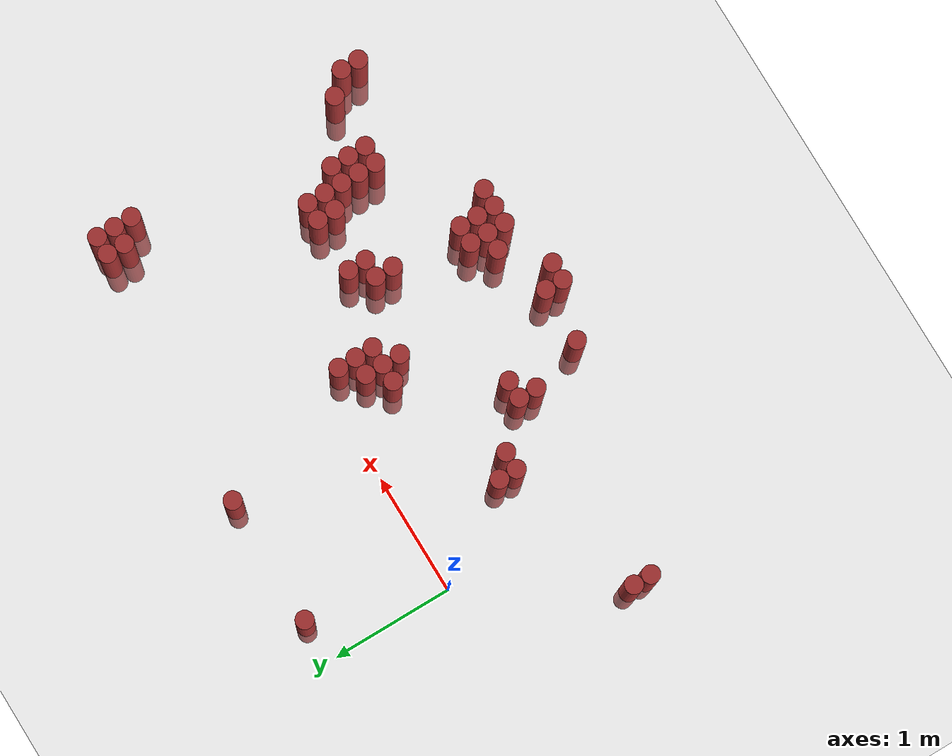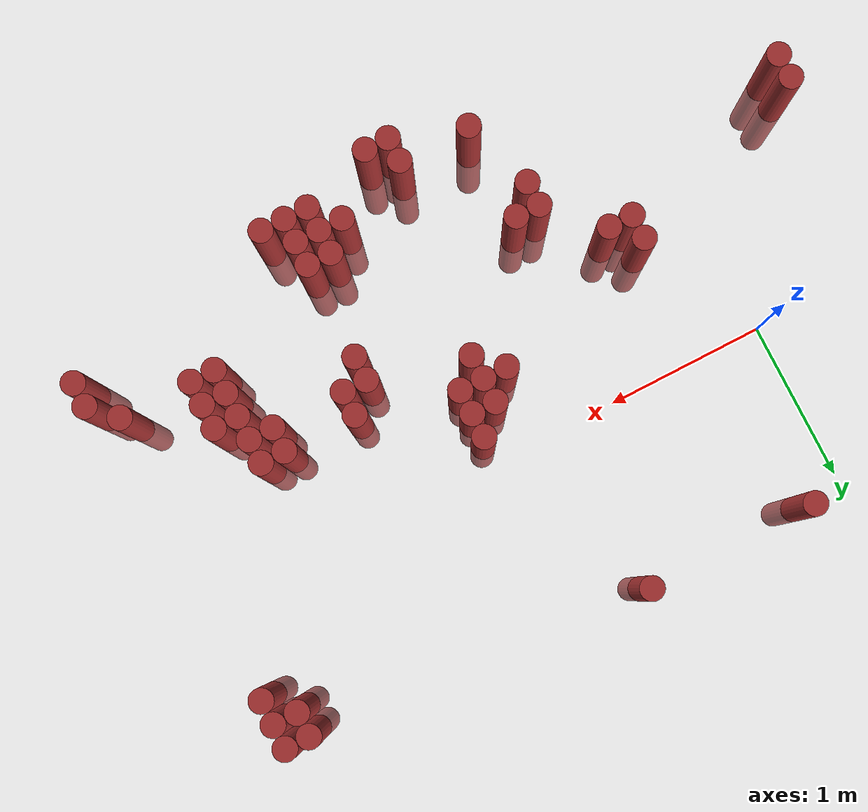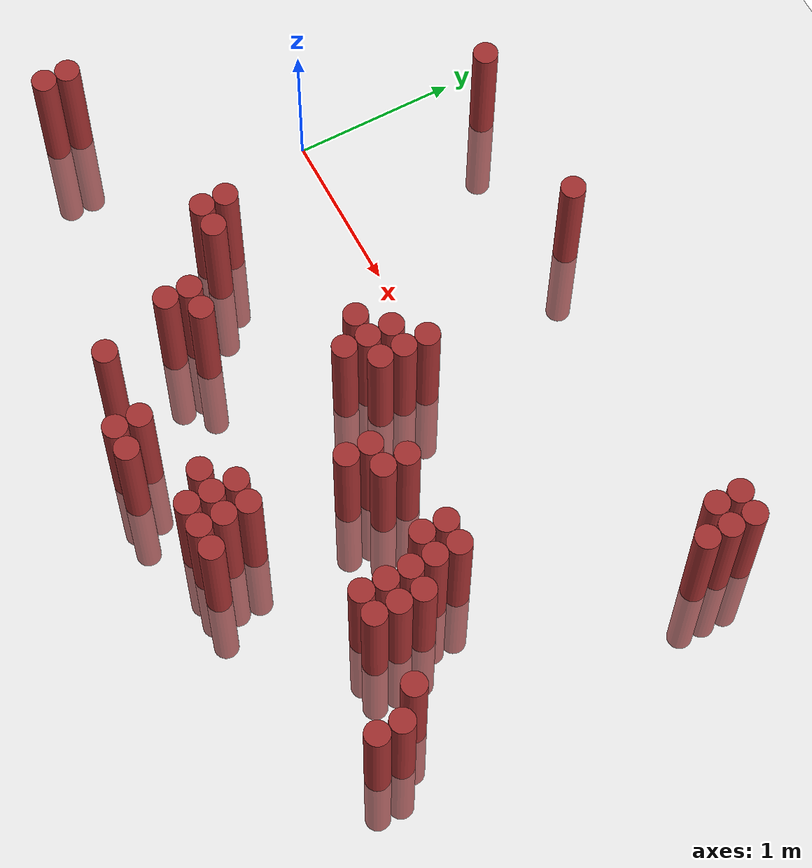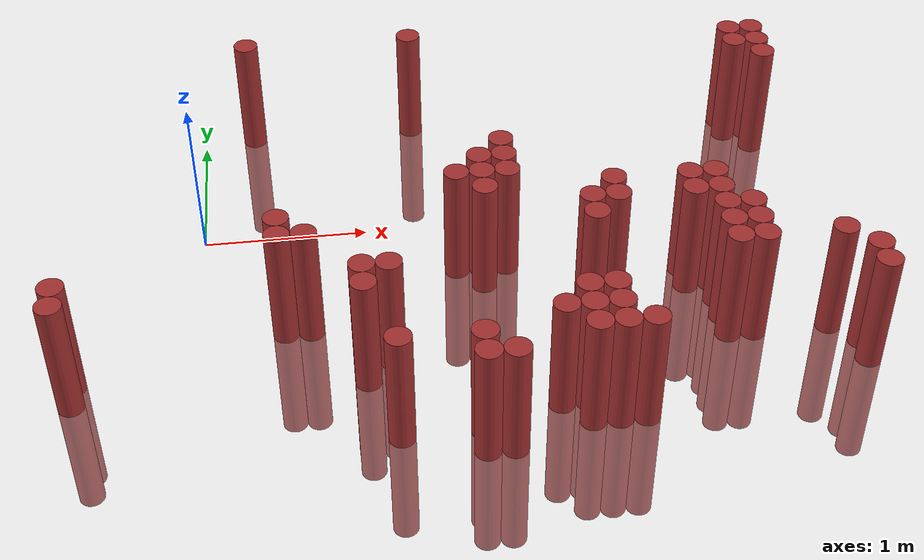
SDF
<sdf version="1.6">
 <world name="default">
  <model name="ground_plane">
   <static>1</static>
   <link name="link">
    <collision name="collision">
     <geometry><plane><normal>0 0 1</normal><size>100 100</size></plane></geometry>
     <surface><friction><ode><mu>100</mu><mu2>50</mu2></ode></friction></surface>
    </collision>
    <visual name="visual">
     <cast_shadows>0</cast_shadows>
     <geometry><plane><normal>0 0 1</normal><size>100 100</size></plane></geometry>
     <material>
      <script><uri>file://media/materials/scripts/gazebo.material</uri><name>Gazebo/Grey</name></script>
     </material>
    </visual>
   </link>
  </model>
  <model name="unit_cylinder_340">
   <static>1</static>
   <pose>-0.725000 -1.325000 0.000000 0.000000 0.000000 0.000000</pose>
   <link name="link">
    <inertial>
     <mass>1</mass>
     <inertia><ixx>0.145833</ixx><ixy>0</ixy><ixz>0</ixz><iyy>0.145833</iyy><iyz>0</iyz><izz>0.125</izz></inertia>
    </inertial>
    <collision name="collision">
     <geometry><cylinder><radius>0.075000</radius><length>1.5</length></cylinder></geometry>
    </collision>
    <visual name="visual">
     <geometry><cylinder><radius>0.075000</radius><length>1.5</length></cylinder></geometry>
     <material>
      <ambient>0.648000 0.192000 0.192000 1</ambient>
      <diffuse>0.648000 0.192000 0.192000 1</diffuse>
     </material>
     <material>
      <script><name>Gazebo/Grey</name><uri>file://media/materials/scripts/gazebo.material</uri></script>
     </material>
    </visual>
   </link>
  </model>
  <model name="unit_cylinder_341">
   <static>1</static>
   <pose>-0.725000 -1.175000 0.000000 0.000000 0.000000 0.000000</pose>
   <link name="link">
    <inertial>
     <mass>1</mass>
     <inertia><ixx>0.145833</ixx><ixy>0</ixy><ixz>0</ixz><iyy>0.145833</iyy><iyz>0</iyz><izz>0.125</izz></inertia>
    </inertial>
    <collision name="collision">
     <geometry><cylinder><radius>0.075000</radius><length>1.5</length></cylinder></geometry>
    </collision>
    <visual name="visual">
     <geometry><cylinder><radius>0.075000</radius><length>1.5</length></cylinder></geometry>
     <material>
      <ambient>0.648000 0.192000 0.192000 1</ambient>
      <diffuse>0.648000 0.192000 0.192000 1</diffuse>
     </material>
     <material>
      <script><name>Gazebo/Grey</name><uri>file://media/materials/scripts/gazebo.material</uri></script>
     </material>
    </visual>
   </link>
  </model>
  <model name="unit_cylinder_368">
   <static>1</static>
   <pose>0.325000 1.075000 0.000000 0.000000 0.000000 0.000000</pose>
   <link name="link">
    <inertial>
     <mass>1</mass>
     <inertia><ixx>0.145833</ixx><ixy>0</ixy><ixz>0</ixz><iyy>0.145833</iyy><iyz>0</iyz><izz>0.125</izz></inertia>
    </inertial>
    <collision name="collision">
     <geometry><cylinder><radius>0.075000</radius><length>1.5</length></cylinder></geometry>
    </collision>
    <visual name="visual">
     <geometry><cylinder><radius>0.075000</radius><length>1.5</length></cylinder></geometry>
     <material>
      <ambient>0.648000 0.192000 0.192000 1</ambient>
      <diffuse>0.648000 0.192000 0.192000 1</diffuse>
     </material>
     <material>
      <script><name>Gazebo/Grey</name><uri>file://media/materials/scripts/gazebo.material</uri></script>
     </material>
    </visual>
   </link>
  </model>
  <model name="unit_cylinder_372">
   <static>1</static>
   <pose>0.475000 -0.875000 0.000000 0.000000 0.000000 0.000000</pose>
   <link name="link">
    <inertial>
     <mass>1</mass>
     <inertia><ixx>0.145833</ixx><ixy>0</ixy><ixz>0</ixz><iyy>0.145833</iyy><iyz>0</iyz><izz>0.125</izz></inertia>
    </inertial>
    <collision name="collision">
     <geometry><cylinder><radius>0.075000</radius><length>1.5</length></cylinder></geometry>
    </collision>
    <visual name="visual">
     <geometry><cylinder><radius>0.075000</radius><length>1.5</length></cylinder></geometry>
     <material>
      <ambient>0.648000 0.192000 0.192000 1</ambient>
      <diffuse>0.648000 0.192000 0.192000 1</diffuse>
     </material>
     <material>
      <script><name>Gazebo/Grey</name><uri>file://media/materials/scripts/gazebo.material</uri></script>
     </material>
    </visual>
   </link>
  </model>
  <model name="unit_cylinder_373">
   <static>1</static>
   <pose>0.475000 -0.725000 0.000000 0.000000 0.000000 0.000000</pose>
   <link name="link">
    <inertial>
     <mass>1</mass>
     <inertia><ixx>0.145833</ixx><ixy>0</ixy><ixz>0</ixz><iyy>0.145833</iyy><iyz>0</iyz><izz>0.125</izz></inertia>
    </inertial>
    <collision name="collision">
     <geometry><cylinder><radius>0.075000</radius><length>1.5</length></cylinder></geometry>
    </collision>
    <visual name="visual">
     <geometry><cylinder><radius>0.075000</radius><length>1.5</length></cylinder></geometry>
     <material>
      <ambient>0.648000 0.192000 0.192000 1</ambient>
      <diffuse>0.648000 0.192000 0.192000 1</diffuse>
     </material>
     <material>
      <script><name>Gazebo/Grey</name><uri>file://media/materials/scripts/gazebo.material</uri></script>
     </material>
    </visual>
   </link>
  </model>
  <model name="unit_cylinder_377">
   <static>1</static>
   <pose>0.625000 -0.875000 0.000000 0.000000 0.000000 0.000000</pose>
   <link name="link">
    <inertial>
     <mass>1</mass>
     <inertia><ixx>0.145833</ixx><ixy>0</ixy><ixz>0</ixz><iyy>0.145833</iyy><iyz>0</iyz><izz>0.125</izz></inertia>
    </inertial>
    <collision name="collision">
     <geometry><cylinder><radius>0.075000</radius><length>1.5</length></cylinder></geometry>
    </collision>
    <visual name="visual">
     <geometry><cylinder><radius>0.075000</radius><length>1.5</length></cylinder></geometry>
     <material>
      <ambient>0.648000 0.192000 0.192000 1</ambient>
      <diffuse>0.648000 0.192000 0.192000 1</diffuse>
     </material>
     <material>
      <script><name>Gazebo/Grey</name><uri>file://media/materials/scripts/gazebo.material</uri></script>
     </material>
    </visual>
   </link>
  </model>
  <model name="unit_cylinder_382">
   <static>1</static>
   <pose>0.925000 -1.325000 0.000000 0.000000 0.000000 0.000000</pose>
   <link name="link">
    <inertial>
     <mass>1</mass>
     <inertia><ixx>0.145833</ixx><ixy>0</ixy><ixz>0</ixz><iyy>0.145833</iyy><iyz>0</iyz><izz>0.125</izz></inertia>
    </inertial>
    <collision name="collision">
     <geometry><cylinder><radius>0.075000</radius><length>1.5</length></cylinder></geometry>
    </collision>
    <visual name="visual">
     <geometry><cylinder><radius>0.075000</radius><length>1.5</length></cylinder></geometry>
     <material>
      <ambient>0.648000 0.192000 0.192000 1</ambient>
      <diffuse>0.648000 0.192000 0.192000 1</diffuse>
     </material>
     <material>
      <script><name>Gazebo/Grey</name><uri>file://media/materials/scripts/gazebo.material</uri></script>
     </material>
    </visual>
   </link>
  </model>
  <model name="unit_cylinder_383">
   <static>1</static>
   <pose>0.925000 -1.175000 0.000000 0.000000 0.000000 0.000000</pose>
   <link name="link">
    <inertial>
     <mass>1</mass>
     <inertia><ixx>0.145833</ixx><ixy>0</ixy><ixz>0</ixz><iyy>0.145833</iyy><iyz>0</iyz><izz>0.125</izz></inertia>
    </inertial>
    <collision name="collision">
     <geometry><cylinder><radius>0.075000</radius><length>1.5</length></cylinder></geometry>
    </collision>
    <visual name="visual">
     <geometry><cylinder><radius>0.075000</radius><length>1.5</length></cylinder></geometry>
     <material>
      <ambient>0.648000 0.192000 0.192000 1</ambient>
      <diffuse>0.648000 0.192000 0.192000 1</diffuse>
     </material>
     <material>
      <script><name>Gazebo/Grey</name><uri>file://media/materials/scripts/gazebo.material</uri></script>
     </material>
    </visual>
   </link>
  </model>
  <model name="unit_cylinder_390">
   <static>1</static>
   <pose>1.075000 -1.775000 0.000000 0.000000 0.000000 0.000000</pose>
   <link name="link">
    <inertial>
     <mass>1</mass>
     <inertia><ixx>0.145833</ixx><ixy>0</ixy><ixz>0</ixz><iyy>0.145833</iyy><iyz>0</iyz><izz>0.125</izz></inertia>
    </inertial>
    <collision name="collision">
     <geometry><cylinder><radius>0.075000</radius><length>1.5</length></cylinder></geometry>
    </collision>
    <visual name="visual">
     <geometry><cylinder><radius>0.075000</radius><length>1.5</length></cylinder></geometry>
     <material>
      <ambient>0.648000 0.192000 0.192000 1</ambient>
      <diffuse>0.648000 0.192000 0.192000 1</diffuse>
     </material>
     <material>
      <script><name>Gazebo/Grey</name><uri>file://media/materials/scripts/gazebo.material</uri></script>
     </material>
    </visual>
   </link>
  </model>
  <model name="unit_cylinder_391">
   <static>1</static>
   <pose>1.075000 -1.175000 0.000000 0.000000 0.000000 0.000000</pose>
   <link name="link">
    <inertial>
     <mass>1</mass>
     <inertia><ixx>0.145833</ixx><ixy>0</ixy><ixz>0</ixz><iyy>0.145833</iyy><iyz>0</iyz><izz>0.125</izz></inertia>
    </inertial>
    <collision name="collision">
     <geometry><cylinder><radius>0.075000</radius><length>1.5</length></cylinder></geometry>
    </collision>
    <visual name="visual">
     <geometry><cylinder><radius>0.075000</radius><length>1.5</length></cylinder></geometry>
     <material>
      <ambient>0.648000 0.192000 0.192000 1</ambient>
      <diffuse>0.648000 0.192000 0.192000 1</diffuse>
     </material>
     <material>
      <script><name>Gazebo/Grey</name><uri>file://media/materials/scripts/gazebo.material</uri></script>
     </material>
    </visual>
   </link>
  </model>
  <model name="unit_cylinder_401">
   <static>1</static>
   <pose>1.375000 1.075000 0.000000 0.000000 0.000000 0.000000</pose>
   <link name="link">
    <inertial>
     <mass>1</mass>
     <inertia><ixx>0.145833</ixx><ixy>0</ixy><ixz>0</ixz><iyy>0.145833</iyy><iyz>0</iyz><izz>0.125</izz></inertia>
    </inertial>
    <collision name="collision">
     <geometry><cylinder><radius>0.075000</radius><length>1.5</length></cylinder></geometry>
    </collision>
    <visual name="visual">
     <geometry><cylinder><radius>0.075000</radius><length>1.5</length></cylinder></geometry>
     <material>
      <ambient>0.648000 0.192000 0.192000 1</ambient>
      <diffuse>0.648000 0.192000 0.192000 1</diffuse>
     </material>
     <material>
      <script><name>Gazebo/Grey</name><uri>file://media/materials/scripts/gazebo.material</uri></script>
     </material>
    </visual>
   </link>
  </model>
  <model name="unit_cylinder_403">
   <static>1</static>
   <pose>1.525000 -1.925000 0.000000 0.000000 0.000000 0.000000</pose>
   <link name="link">
    <inertial>
     <mass>1</mass>
     <inertia><ixx>0.145833</ixx><ixy>0</ixy><ixz>0</ixz><iyy>0.145833</iyy><iyz>0</iyz><izz>0.125</izz></inertia>
    </inertial>
    <collision name="collision">
     <geometry><cylinder><radius>0.075000</radius><length>1.5</length></cylinder></geometry>
    </collision>
    <visual name="visual">
     <geometry><cylinder><radius>0.075000</radius><length>1.5</length></cylinder></geometry>
     <material>
      <ambient>0.648000 0.192000 0.192000 1</ambient>
      <diffuse>0.648000 0.192000 0.192000 1</diffuse>
     </material>
     <material>
      <script><name>Gazebo/Grey</name><uri>file://media/materials/scripts/gazebo.material</uri></script>
     </material>
    </visual>
   </link>
  </model>
  <model name="unit_cylinder_404">
   <static>1</static>
   <pose>1.525000 -1.775000 0.000000 0.000000 0.000000 0.000000</pose>
   <link name="link">
    <inertial>
     <mass>1</mass>
     <inertia><ixx>0.145833</ixx><ixy>0</ixy><ixz>0</ixz><iyy>0.145833</iyy><iyz>0</iyz><izz>0.125</izz></inertia>
    </inertial>
    <collision name="collision">
     <geometry><cylinder><radius>0.075000</radius><length>1.5</length></cylinder></geometry>
    </collision>
    <visual name="visual">
     <geometry><cylinder><radius>0.075000</radius><length>1.5</length></cylinder></geometry>
     <material>
      <ambient>0.648000 0.192000 0.192000 1</ambient>
      <diffuse>0.648000 0.192000 0.192000 1</diffuse>
     </material>
     <material>
      <script><name>Gazebo/Grey</name><uri>file://media/materials/scripts/gazebo.material</uri></script>
     </material>
    </visual>
   </link>
  </model>
  <model name="unit_cylinder_405">
   <static>1</static>
   <pose>1.525000 -0.425000 0.000000 0.000000 0.000000 0.000000</pose>
   <link name="link">
    <inertial>
     <mass>1</mass>
     <inertia><ixx>0.145833</ixx><ixy>0</ixy><ixz>0</ixz><iyy>0.145833</iyy><iyz>0</iyz><izz>0.125</izz></inertia>
    </inertial>
    <collision name="collision">
     <geometry><cylinder><radius>0.075000</radius><length>1.5</length></cylinder></geometry>
    </collision>
    <visual name="visual">
     <geometry><cylinder><radius>0.075000</radius><length>1.5</length></cylinder></geometry>
     <material>
      <ambient>0.648000 0.192000 0.192000 1</ambient>
      <diffuse>0.648000 0.192000 0.192000 1</diffuse>
     </material>
     <material>
      <script><name>Gazebo/Grey</name><uri>file://media/materials/scripts/gazebo.material</uri></script>
     </material>
    </visual>
   </link>
  </model>
  <model name="unit_cylinder_408">
   <static>1</static>
   <pose>1.675000 -1.925000 0.000000 0.000000 0.000000 0.000000</pose>
   <link name="link">
    <inertial>
     <mass>1</mass>
     <inertia><ixx>0.145833</ixx><ixy>0</ixy><ixz>0</ixz><iyy>0.145833</iyy><iyz>0</iyz><izz>0.125</izz></inertia>
    </inertial>
    <collision name="collision">
     <geometry><cylinder><radius>0.075000</radius><length>1.5</length></cylinder></geometry>
    </collision>
    <visual name="visual">
     <geometry><cylinder><radius>0.075000</radius><length>1.5</length></cylinder></geometry>
     <material>
      <ambient>0.648000 0.192000 0.192000 1</ambient>
      <diffuse>0.648000 0.192000 0.192000 1</diffuse>
     </material>
     <material>
      <script><name>Gazebo/Grey</name><uri>file://media/materials/scripts/gazebo.material</uri></script>
     </material>
    </visual>
   </link>
  </model>
  <model name="unit_cylinder_409">
   <static>1</static>
   <pose>1.675000 -0.575000 0.000000 0.000000 0.000000 0.000000</pose>
   <link name="link">
    <inertial>
     <mass>1</mass>
     <inertia><ixx>0.145833</ixx><ixy>0</ixy><ixz>0</ixz><iyy>0.145833</iyy><iyz>0</iyz><izz>0.125</izz></inertia>
    </inertial>
    <collision name="collision">
     <geometry><cylinder><radius>0.075000</radius><length>1.5</length></cylinder></geometry>
    </collision>
    <visual name="visual">
     <geometry><cylinder><radius>0.075000</radius><length>1.5</length></cylinder></geometry>
     <material>
      <ambient>0.648000 0.192000 0.192000 1</ambient>
      <diffuse>0.648000 0.192000 0.192000 1</diffuse>
     </material>
     <material>
      <script><name>Gazebo/Grey</name><uri>file://media/materials/scripts/gazebo.material</uri></script>
     </material>
    </visual>
   </link>
  </model>
  <model name="unit_cylinder_410">
   <static>1</static>
   <pose>1.675000 -0.425000 0.000000 0.000000 0.000000 0.000000</pose>
   <link name="link">
    <inertial>
     <mass>1</mass>
     <inertia><ixx>0.145833</ixx><ixy>0</ixy><ixz>0</ixz><iyy>0.145833</iyy><iyz>0</iyz><izz>0.125</izz></inertia>
    </inertial>
    <collision name="collision">
     <geometry><cylinder><radius>0.075000</radius><length>1.5</length></cylinder></geometry>
    </collision>
    <visual name="visual">
     <geometry><cylinder><radius>0.075000</radius><length>1.5</length></cylinder></geometry>
     <material>
      <ambient>0.648000 0.192000 0.192000 1</ambient>
      <diffuse>0.648000 0.192000 0.192000 1</diffuse>
     </material>
     <material>
      <script><name>Gazebo/Grey</name><uri>file://media/materials/scripts/gazebo.material</uri></script>
     </material>
    </visual>
   </link>
  </model>
  <model name="unit_cylinder_411">
   <static>1</static>
   <pose>1.675000 -0.275000 0.000000 0.000000 0.000000 0.000000</pose>
   <link name="link">
    <inertial>
     <mass>1</mass>
     <inertia><ixx>0.145833</ixx><ixy>0</ixy><ixz>0</ixz><iyy>0.145833</iyy><iyz>0</iyz><izz>0.125</izz></inertia>
    </inertial>
    <collision name="collision">
     <geometry><cylinder><radius>0.075000</radius><length>1.5</length></cylinder></geometry>
    </collision>
    <visual name="visual">
     <geometry><cylinder><radius>0.075000</radius><length>1.5</length></cylinder></geometry>
     <material>
      <ambient>0.648000 0.192000 0.192000 1</ambient>
      <diffuse>0.648000 0.192000 0.192000 1</diffuse>
     </material>
     <material>
      <script><name>Gazebo/Grey</name><uri>file://media/materials/scripts/gazebo.material</uri></script>
     </material>
    </visual>
   </link>
  </model>
  <model name="unit_cylinder_413">
   <static>1</static>
   <pose>1.825000 -0.425000 0.000000 0.000000 0.000000 0.000000</pose>
   <link name="link">
    <inertial>
     <mass>1</mass>
     <inertia><ixx>0.145833</ixx><ixy>0</ixy><ixz>0</ixz><iyy>0.145833</iyy><iyz>0</iyz><izz>0.125</izz></inertia>
    </inertial>
    <collision name="collision">
     <geometry><cylinder><radius>0.075000</radius><length>1.5</length></cylinder></geometry>
    </collision>
    <visual name="visual">
     <geometry><cylinder><radius>0.075000</radius><length>1.5</length></cylinder></geometry>
     <material>
      <ambient>0.648000 0.192000 0.192000 1</ambient>
      <diffuse>0.648000 0.192000 0.192000 1</diffuse>
     </material>
     <material>
      <script><name>Gazebo/Grey</name><uri>file://media/materials/scripts/gazebo.material</uri></script>
     </material>
    </visual>
   </link>
  </model>
  <model name="unit_cylinder_414">
   <static>1</static>
   <pose>1.825000 -0.275000 0.000000 0.000000 0.000000 0.000000</pose>
   <link name="link">
    <inertial>
     <mass>1</mass>
     <inertia><ixx>0.145833</ixx><ixy>0</ixy><ixz>0</ixz><iyy>0.145833</iyy><iyz>0</iyz><izz>0.125</izz></inertia>
    </inertial>
    <collision name="collision">
     <geometry><cylinder><radius>0.075000</radius><length>1.5</length></cylinder></geometry>
    </collision>
    <visual name="visual">
     <geometry><cylinder><radius>0.075000</radius><length>1.5</length></cylinder></geometry>
     <material>
      <ambient>0.648000 0.192000 0.192000 1</ambient>
      <diffuse>0.648000 0.192000 0.192000 1</diffuse>
     </material>
     <material>
      <script><name>Gazebo/Grey</name><uri>file://media/materials/scripts/gazebo.material</uri></script>
     </material>
    </visual>
   </link>
  </model>
  <model name="unit_cylinder_415">
   <static>1</static>
   <pose>1.825000 -0.125000 0.000000 0.000000 0.000000 0.000000</pose>
   <link name="link">
    <inertial>
     <mass>1</mass>
     <inertia><ixx>0.145833</ixx><ixy>0</ixy><ixz>0</ixz><iyy>0.145833</iyy><iyz>0</iyz><izz>0.125</izz></inertia>
    </inertial>
    <collision name="collision">
     <geometry><cylinder><radius>0.075000</radius><length>1.5</length></cylinder></geometry>
    </collision>
    <visual name="visual">
     <geometry><cylinder><radius>0.075000</radius><length>1.5</length></cylinder></geometry>
     <material>
      <ambient>0.648000 0.192000 0.192000 1</ambient>
      <diffuse>0.648000 0.192000 0.192000 1</diffuse>
     </material>
     <material>
      <script><name>Gazebo/Grey</name><uri>file://media/materials/scripts/gazebo.material</uri></script>
     </material>
    </visual>
   </link>
  </model>
  <model name="unit_cylinder_421">
   <static>1</static>
   <pose>1.975000 -1.625000 0.000000 0.000000 0.000000 0.000000</pose>
   <link name="link">
    <inertial>
     <mass>1</mass>
     <inertia><ixx>0.145833</ixx><ixy>0</ixy><ixz>0</ixz><iyy>0.145833</iyy><iyz>0</iyz><izz>0.125</izz></inertia>
    </inertial>
    <collision name="collision">
     <geometry><cylinder><radius>0.075000</radius><length>1.5</length></cylinder></geometry>
    </collision>
    <visual name="visual">
     <geometry><cylinder><radius>0.075000</radius><length>1.5</length></cylinder></geometry>
     <material>
      <ambient>0.648000 0.192000 0.192000 1</ambient>
      <diffuse>0.648000 0.192000 0.192000 1</diffuse>
     </material>
     <material>
      <script><name>Gazebo/Grey</name><uri>file://media/materials/scripts/gazebo.material</uri></script>
     </material>
    </visual>
   </link>
  </model>
  <model name="unit_cylinder_428">
   <static>1</static>
   <pose>2.125000 -1.775000 0.000000 0.000000 0.000000 0.000000</pose>
   <link name="link">
    <inertial>
     <mass>1</mass>
     <inertia><ixx>0.145833</ixx><ixy>0</ixy><ixz>0</ixz><iyy>0.145833</iyy><iyz>0</iyz><izz>0.125</izz></inertia>
    </inertial>
    <collision name="collision">
     <geometry><cylinder><radius>0.075000</radius><length>1.5</length></cylinder></geometry>
    </collision>
    <visual name="visual">
     <geometry><cylinder><radius>0.075000</radius><length>1.5</length></cylinder></geometry>
     <material>
      <ambient>0.648000 0.192000 0.192000 1</ambient>
      <diffuse>0.648000 0.192000 0.192000 1</diffuse>
     </material>
     <material>
      <script><name>Gazebo/Grey</name><uri>file://media/materials/scripts/gazebo.material</uri></script>
     </material>
    </visual>
   </link>
  </model>
  <model name="unit_cylinder_429">
   <static>1</static>
   <pose>2.125000 -1.625000 0.000000 0.000000 0.000000 0.000000</pose>
   <link name="link">
    <inertial>
     <mass>1</mass>
     <inertia><ixx>0.145833</ixx><ixy>0</ixy><ixz>0</ixz><iyy>0.145833</iyy><iyz>0</iyz><izz>0.125</izz></inertia>
    </inertial>
    <collision name="collision">
     <geometry><cylinder><radius>0.075000</radius><length>1.5</length></cylinder></geometry>
    </collision>
    <visual name="visual">
     <geometry><cylinder><radius>0.075000</radius><length>1.5</length></cylinder></geometry>
     <material>
      <ambient>0.648000 0.192000 0.192000 1</ambient>
      <diffuse>0.648000 0.192000 0.192000 1</diffuse>
     </material>
     <material>
      <script><name>Gazebo/Grey</name><uri>file://media/materials/scripts/gazebo.material</uri></script>
     </material>
    </visual>
   </link>
  </model>
  <model name="unit_cylinder_430">
   <static>1</static>
   <pose>2.125000 -1.475000 0.000000 0.000000 0.000000 0.000000</pose>
   <link name="link">
    <inertial>
     <mass>1</mass>
     <inertia><ixx>0.145833</ixx><ixy>0</ixy><ixz>0</ixz><iyy>0.145833</iyy><iyz>0</iyz><izz>0.125</izz></inertia>
    </inertial>
    <collision name="collision">
     <geometry><cylinder><radius>0.075000</radius><length>1.5</length></cylinder></geometry>
    </collision>
    <visual name="visual">
     <geometry><cylinder><radius>0.075000</radius><length>1.5</length></cylinder></geometry>
     <material>
      <ambient>0.648000 0.192000 0.192000 1</ambient>
      <diffuse>0.648000 0.192000 0.192000 1</diffuse>
     </material>
     <material>
      <script><name>Gazebo/Grey</name><uri>file://media/materials/scripts/gazebo.material</uri></script>
     </material>
    </visual>
   </link>
  </model>
  <model name="unit_cylinder_434">
   <static>1</static>
   <pose>2.275000 -1.775000 0.000000 0.000000 0.000000 0.000000</pose>
   <link name="link">
    <inertial>
     <mass>1</mass>
     <inertia><ixx>0.145833</ixx><ixy>0</ixy><ixz>0</ixz><iyy>0.145833</iyy><iyz>0</iyz><izz>0.125</izz></inertia>
    </inertial>
    <collision name="collision">
     <geometry><cylinder><radius>0.075000</radius><length>1.5</length></cylinder></geometry>
    </collision>
    <visual name="visual">
     <geometry><cylinder><radius>0.075000</radius><length>1.5</length></cylinder></geometry>
     <material>
      <ambient>0.648000 0.192000 0.192000 1</ambient>
      <diffuse>0.648000 0.192000 0.192000 1</diffuse>
     </material>
     <material>
      <script><name>Gazebo/Grey</name><uri>file://media/materials/scripts/gazebo.material</uri></script>
     </material>
    </visual>
   </link>
  </model>
  <model name="unit_cylinder_435">
   <static>1</static>
   <pose>2.275000 -1.625000 0.000000 0.000000 0.000000 0.000000</pose>
   <link name="link">
    <inertial>
     <mass>1</mass>
     <inertia><ixx>0.145833</ixx><ixy>0</ixy><ixz>0</ixz><iyy>0.145833</iyy><iyz>0</iyz><izz>0.125</izz></inertia>
    </inertial>
    <collision name="collision">
     <geometry><cylinder><radius>0.075000</radius><length>1.5</length></cylinder></geometry>
    </collision>
    <visual name="visual">
     <geometry><cylinder><radius>0.075000</radius><length>1.5</length></cylinder></geometry>
     <material>
      <ambient>0.648000 0.192000 0.192000 1</ambient>
      <diffuse>0.648000 0.192000 0.192000 1</diffuse>
     </material>
     <material>
      <script><name>Gazebo/Grey</name><uri>file://media/materials/scripts/gazebo.material</uri></script>
     </material>
    </visual>
   </link>
  </model>
  <model name="unit_cylinder_436">
   <static>1</static>
   <pose>2.275000 -1.475000 0.000000 0.000000 0.000000 0.000000</pose>
   <link name="link">
    <inertial>
     <mass>1</mass>
     <inertia><ixx>0.145833</ixx><ixy>0</ixy><ixz>0</ixz><iyy>0.145833</iyy><iyz>0</iyz><izz>0.125</izz></inertia>
    </inertial>
    <collision name="collision">
     <geometry><cylinder><radius>0.075000</radius><length>1.5</length></cylinder></geometry>
    </collision>
    <visual name="visual">
     <geometry><cylinder><radius>0.075000</radius><length>1.5</length></cylinder></geometry>
     <material>
      <ambient>0.648000 0.192000 0.192000 1</ambient>
      <diffuse>0.648000 0.192000 0.192000 1</diffuse>
     </material>
     <material>
      <script><name>Gazebo/Grey</name><uri>file://media/materials/scripts/gazebo.material</uri></script>
     </material>
    </visual>
   </link>
  </model>
  <model name="unit_cylinder_437">
   <static>1</static>
   <pose>2.275000 -0.875000 0.000000 0.000000 0.000000 0.000000</pose>
   <link name="link">
    <inertial>
     <mass>1</mass>
     <inertia><ixx>0.145833</ixx><ixy>0</ixy><ixz>0</ixz><iyy>0.145833</iyy><iyz>0</iyz><izz>0.125</izz></inertia>
    </inertial>
    <collision name="collision">
     <geometry><cylinder><radius>0.075000</radius><length>1.5</length></cylinder></geometry>
    </collision>
    <visual name="visual">
     <geometry><cylinder><radius>0.075000</radius><length>1.5</length></cylinder></geometry>
     <material>
      <ambient>0.648000 0.192000 0.192000 1</ambient>
      <diffuse>0.648000 0.192000 0.192000 1</diffuse>
     </material>
     <material>
      <script><name>Gazebo/Grey</name><uri>file://media/materials/scripts/gazebo.material</uri></script>
     </material>
    </visual>
   </link>
  </model>
  <model name="unit_cylinder_438">
   <static>1</static>
   <pose>2.275000 -0.725000 0.000000 0.000000 0.000000 0.000000</pose>
   <link name="link">
    <inertial>
     <mass>1</mass>
     <inertia><ixx>0.145833</ixx><ixy>0</ixy><ixz>0</ixz><iyy>0.145833</iyy><iyz>0</iyz><izz>0.125</izz></inertia>
    </inertial>
    <collision name="collision">
     <geometry><cylinder><radius>0.075000</radius><length>1.5</length></cylinder></geometry>
    </collision>
    <visual name="visual">
     <geometry><cylinder><radius>0.075000</radius><length>1.5</length></cylinder></geometry>
     <material>
      <ambient>0.648000 0.192000 0.192000 1</ambient>
      <diffuse>0.648000 0.192000 0.192000 1</diffuse>
     </material>
     <material>
      <script><name>Gazebo/Grey</name><uri>file://media/materials/scripts/gazebo.material</uri></script>
     </material>
    </visual>
   </link>
  </model>
  <model name="unit_cylinder_442">
   <static>1</static>
   <pose>2.425000 -1.775000 0.000000 0.000000 0.000000 0.000000</pose>
   <link name="link">
    <inertial>
     <mass>1</mass>
     <inertia><ixx>0.145833</ixx><ixy>0</ixy><ixz>0</ixz><iyy>0.145833</iyy><iyz>0</iyz><izz>0.125</izz></inertia>
    </inertial>
    <collision name="collision">
     <geometry><cylinder><radius>0.075000</radius><length>1.5</length></cylinder></geometry>
    </collision>
    <visual name="visual">
     <geometry><cylinder><radius>0.075000</radius><length>1.5</length></cylinder></geometry>
     <material>
      <ambient>0.648000 0.192000 0.192000 1</ambient>
      <diffuse>0.648000 0.192000 0.192000 1</diffuse>
     </material>
     <material>
      <script><name>Gazebo/Grey</name><uri>file://media/materials/scripts/gazebo.material</uri></script>
     </material>
    </visual>
   </link>
  </model>
  <model name="unit_cylinder_443">
   <static>1</static>
   <pose>2.425000 -0.725000 0.000000 0.000000 0.000000 0.000000</pose>
   <link name="link">
    <inertial>
     <mass>1</mass>
     <inertia><ixx>0.145833</ixx><ixy>0</ixy><ixz>0</ixz><iyy>0.145833</iyy><iyz>0</iyz><izz>0.125</izz></inertia>
    </inertial>
    <collision name="collision">
     <geometry><cylinder><radius>0.075000</radius><length>1.5</length></cylinder></geometry>
    </collision>
    <visual name="visual">
     <geometry><cylinder><radius>0.075000</radius><length>1.5</length></cylinder></geometry>
     <material>
      <ambient>0.648000 0.192000 0.192000 1</ambient>
      <diffuse>0.648000 0.192000 0.192000 1</diffuse>
     </material>
     <material>
      <script><name>Gazebo/Grey</name><uri>file://media/materials/scripts/gazebo.material</uri></script>
     </material>
    </visual>
   </link>
  </model>
  <model name="unit_cylinder_444">
   <static>1</static>
   <pose>2.425000 -0.575000 0.000000 0.000000 0.000000 0.000000</pose>
   <link name="link">
    <inertial>
     <mass>1</mass>
     <inertia><ixx>0.145833</ixx><ixy>0</ixy><ixz>0</ixz><iyy>0.145833</iyy><iyz>0</iyz><izz>0.125</izz></inertia>
    </inertial>
    <collision name="collision">
     <geometry><cylinder><radius>0.075000</radius><length>1.5</length></cylinder></geometry>
    </collision>
    <visual name="visual">
     <geometry><cylinder><radius>0.075000</radius><length>1.5</length></cylinder></geometry>
     <material>
      <ambient>0.648000 0.192000 0.192000 1</ambient>
      <diffuse>0.648000 0.192000 0.192000 1</diffuse>
     </material>
     <material>
      <script><name>Gazebo/Grey</name><uri>file://media/materials/scripts/gazebo.material</uri></script>
     </material>
    </visual>
   </link>
  </model>
  <model name="unit_cylinder_458">
   <static>1</static>
   <pose>2.875000 -0.725000 0.000000 0.000000 0.000000 0.000000</pose>
   <link name="link">
    <inertial>
     <mass>1</mass>
     <inertia><ixx>0.145833</ixx><ixy>0</ixy><ixz>0</ixz><iyy>0.145833</iyy><iyz>0</iyz><izz>0.125</izz></inertia>
    </inertial>
    <collision name="collision">
     <geometry><cylinder><radius>0.075000</radius><length>1.5</length></cylinder></geometry>
    </collision>
    <visual name="visual">
     <geometry><cylinder><radius>0.075000</radius><length>1.5</length></cylinder></geometry>
     <material>
      <ambient>0.648000 0.192000 0.192000 1</ambient>
      <diffuse>0.648000 0.192000 0.192000 1</diffuse>
     </material>
     <material>
      <script><name>Gazebo/Grey</name><uri>file://media/materials/scripts/gazebo.material</uri></script>
     </material>
    </visual>
   </link>
  </model>
  <model name="unit_cylinder_459">
   <static>1</static>
   <pose>2.875000 -0.575000 0.000000 0.000000 0.000000 0.000000</pose>
   <link name="link">
    <inertial>
     <mass>1</mass>
     <inertia><ixx>0.145833</ixx><ixy>0</ixy><ixz>0</ixz><iyy>0.145833</iyy><iyz>0</iyz><izz>0.125</izz></inertia>
    </inertial>
    <collision name="collision">
     <geometry><cylinder><radius>0.075000</radius><length>1.5</length></cylinder></geometry>
    </collision>
    <visual name="visual">
     <geometry><cylinder><radius>0.075000</radius><length>1.5</length></cylinder></geometry>
     <material>
      <ambient>0.648000 0.192000 0.192000 1</ambient>
      <diffuse>0.648000 0.192000 0.192000 1</diffuse>
     </material>
     <material>
      <script><name>Gazebo/Grey</name><uri>file://media/materials/scripts/gazebo.material</uri></script>
     </material>
    </visual>
   </link>
  </model>
  <model name="unit_cylinder_460">
   <static>1</static>
   <pose>3.025000 -1.175000 0.000000 0.000000 0.000000 0.000000</pose>
   <link name="link">
    <inertial>
     <mass>1</mass>
     <inertia><ixx>0.145833</ixx><ixy>0</ixy><ixz>0</ixz><iyy>0.145833</iyy><iyz>0</iyz><izz>0.125</izz></inertia>
    </inertial>
    <collision name="collision">
     <geometry><cylinder><radius>0.075000</radius><length>1.5</length></cylinder></geometry>
    </collision>
    <visual name="visual">
     <geometry><cylinder><radius>0.075000</radius><length>1.5</length></cylinder></geometry>
     <material>
      <ambient>0.648000 0.192000 0.192000 1</ambient>
      <diffuse>0.648000 0.192000 0.192000 1</diffuse>
     </material>
     <material>
      <script><name>Gazebo/Grey</name><uri>file://media/materials/scripts/gazebo.material</uri></script>
     </material>
    </visual>
   </link>
  </model>
  <model name="unit_cylinder_461">
   <static>1</static>
   <pose>3.025000 -1.025000 0.000000 0.000000 0.000000 0.000000</pose>
   <link name="link">
    <inertial>
     <mass>1</mass>
     <inertia><ixx>0.145833</ixx><ixy>0</ixy><ixz>0</ixz><iyy>0.145833</iyy><iyz>0</iyz><izz>0.125</izz></inertia>
    </inertial>
    <collision name="collision">
     <geometry><cylinder><radius>0.075000</radius><length>1.5</length></cylinder></geometry>
    </collision>
    <visual name="visual">
     <geometry><cylinder><radius>0.075000</radius><length>1.5</length></cylinder></geometry>
     <material>
      <ambient>0.648000 0.192000 0.192000 1</ambient>
      <diffuse>0.648000 0.192000 0.192000 1</diffuse>
     </material>
     <material>
      <script><name>Gazebo/Grey</name><uri>file://media/materials/scripts/gazebo.material</uri></script>
     </material>
    </visual>
   </link>
  </model>
  <model name="unit_cylinder_462">
   <static>1</static>
   <pose>3.025000 -0.875000 0.000000 0.000000 0.000000 0.000000</pose>
   <link name="link">
    <inertial>
     <mass>1</mass>
     <inertia><ixx>0.145833</ixx><ixy>0</ixy><ixz>0</ixz><iyy>0.145833</iyy><iyz>0</iyz><izz>0.125</izz></inertia>
    </inertial>
    <collision name="collision">
     <geometry><cylinder><radius>0.075000</radius><length>1.5</length></cylinder></geometry>
    </collision>
    <visual name="visual">
     <geometry><cylinder><radius>0.075000</radius><length>1.5</length></cylinder></geometry>
     <material>
      <ambient>0.648000 0.192000 0.192000 1</ambient>
      <diffuse>0.648000 0.192000 0.192000 1</diffuse>
     </material>
     <material>
      <script><name>Gazebo/Grey</name><uri>file://media/materials/scripts/gazebo.material</uri></script>
     </material>
    </visual>
   </link>
  </model>
  <model name="unit_cylinder_463">
   <static>1</static>
   <pose>3.025000 -0.725000 0.000000 0.000000 0.000000 0.000000</pose>
   <link name="link">
    <inertial>
     <mass>1</mass>
     <inertia><ixx>0.145833</ixx><ixy>0</ixy><ixz>0</ixz><iyy>0.145833</iyy><iyz>0</iyz><izz>0.125</izz></inertia>
    </inertial>
    <collision name="collision">
     <geometry><cylinder><radius>0.075000</radius><length>1.5</length></cylinder></geometry>
    </collision>
    <visual name="visual">
     <geometry><cylinder><radius>0.075000</radius><length>1.5</length></cylinder></geometry>
     <material>
      <ambient>0.648000 0.192000 0.192000 1</ambient>
      <diffuse>0.648000 0.192000 0.192000 1</diffuse>
     </material>
     <material>
      <script><name>Gazebo/Grey</name><uri>file://media/materials/scripts/gazebo.material</uri></script>
     </material>
    </visual>
   </link>
  </model>
  <model name="unit_cylinder_464">
   <static>1</static>
   <pose>3.025000 -0.575000 0.000000 0.000000 0.000000 0.000000</pose>
   <link name="link">
    <inertial>
     <mass>1</mass>
     <inertia><ixx>0.145833</ixx><ixy>0</ixy><ixz>0</ixz><iyy>0.145833</iyy><iyz>0</iyz><izz>0.125</izz></inertia>
    </inertial>
    <collision name="collision">
     <geometry><cylinder><radius>0.075000</radius><length>1.5</length></cylinder></geometry>
    </collision>
    <visual name="visual">
     <geometry><cylinder><radius>0.075000</radius><length>1.5</length></cylinder></geometry>
     <material>
      <ambient>0.648000 0.192000 0.192000 1</ambient>
      <diffuse>0.648000 0.192000 0.192000 1</diffuse>
     </material>
     <material>
      <script><name>Gazebo/Grey</name><uri>file://media/materials/scripts/gazebo.material</uri></script>
     </material>
    </visual>
   </link>
  </model>
  <model name="unit_cylinder_465">
   <static>1</static>
   <pose>3.175000 -1.175000 0.000000 0.000000 0.000000 0.000000</pose>
   <link name="link">
    <inertial>
     <mass>1</mass>
     <inertia><ixx>0.145833</ixx><ixy>0</ixy><ixz>0</ixz><iyy>0.145833</iyy><iyz>0</iyz><izz>0.125</izz></inertia>
    </inertial>
    <collision name="collision">
     <geometry><cylinder><radius>0.075000</radius><length>1.5</length></cylinder></geometry>
    </collision>
    <visual name="visual">
     <geometry><cylinder><radius>0.075000</radius><length>1.5</length></cylinder></geometry>
     <material>
      <ambient>0.648000 0.192000 0.192000 1</ambient>
      <diffuse>0.648000 0.192000 0.192000 1</diffuse>
     </material>
     <material>
      <script><name>Gazebo/Grey</name><uri>file://media/materials/scripts/gazebo.material</uri></script>
     </material>
    </visual>
   </link>
  </model>
  <model name="unit_cylinder_466">
   <static>1</static>
   <pose>3.175000 -1.025000 0.000000 0.000000 0.000000 0.000000</pose>
   <link name="link">
    <inertial>
     <mass>1</mass>
     <inertia><ixx>0.145833</ixx><ixy>0</ixy><ixz>0</ixz><iyy>0.145833</iyy><iyz>0</iyz><izz>0.125</izz></inertia>
    </inertial>
    <collision name="collision">
     <geometry><cylinder><radius>0.075000</radius><length>1.5</length></cylinder></geometry>
    </collision>
    <visual name="visual">
     <geometry><cylinder><radius>0.075000</radius><length>1.5</length></cylinder></geometry>
     <material>
      <ambient>0.648000 0.192000 0.192000 1</ambient>
      <diffuse>0.648000 0.192000 0.192000 1</diffuse>
     </material>
     <material>
      <script><name>Gazebo/Grey</name><uri>file://media/materials/scripts/gazebo.material</uri></script>
     </material>
    </visual>
   </link>
  </model>
  <model name="unit_cylinder_467">
   <static>1</static>
   <pose>3.175000 -0.875000 0.000000 0.000000 0.000000 0.000000</pose>
   <link name="link">
    <inertial>
     <mass>1</mass>
     <inertia><ixx>0.145833</ixx><ixy>0</ixy><ixz>0</ixz><iyy>0.145833</iyy><iyz>0</iyz><izz>0.125</izz></inertia>
    </inertial>
    <collision name="collision">
     <geometry><cylinder><radius>0.075000</radius><length>1.5</length></cylinder></geometry>
    </collision>
    <visual name="visual">
     <geometry><cylinder><radius>0.075000</radius><length>1.5</length></cylinder></geometry>
     <material>
      <ambient>0.648000 0.192000 0.192000 1</ambient>
      <diffuse>0.648000 0.192000 0.192000 1</diffuse>
     </material>
     <material>
      <script><name>Gazebo/Grey</name><uri>file://media/materials/scripts/gazebo.material</uri></script>
     </material>
    </visual>
   </link>
  </model>
  <model name="unit_cylinder_469">
   <static>1</static>
   <pose>3.475000 0.775000 0.000000 0.000000 0.000000 0.000000</pose>
   <link name="link">
    <inertial>
     <mass>1</mass>
     <inertia><ixx>0.145833</ixx><ixy>0</ixy><ixz>0</ixz><iyy>0.145833</iyy><iyz>0</iyz><izz>0.125</izz></inertia>
    </inertial>
    <collision name="collision">
     <geometry><cylinder><radius>0.075000</radius><length>1.5</length></cylinder></geometry>
    </collision>
    <visual name="visual">
     <geometry><cylinder><radius>0.075000</radius><length>1.5</length></cylinder></geometry>
     <material>
      <ambient>0.648000 0.192000 0.192000 1</ambient>
      <diffuse>0.648000 0.192000 0.192000 1</diffuse>
     </material>
     <material>
      <script><name>Gazebo/Grey</name><uri>file://media/materials/scripts/gazebo.material</uri></script>
     </material>
    </visual>
   </link>
  </model>
  <model name="unit_cylinder_470">
   <static>1</static>
   <pose>3.475000 0.925000 0.000000 0.000000 0.000000 0.000000</pose>
   <link name="link">
    <inertial>
     <mass>1</mass>
     <inertia><ixx>0.145833</ixx><ixy>0</ixy><ixz>0</ixz><iyy>0.145833</iyy><iyz>0</iyz><izz>0.125</izz></inertia>
    </inertial>
    <collision name="collision">
     <geometry><cylinder><radius>0.075000</radius><length>1.5</length></cylinder></geometry>
    </collision>
    <visual name="visual">
     <geometry><cylinder><radius>0.075000</radius><length>1.5</length></cylinder></geometry>
     <material>
      <ambient>0.648000 0.192000 0.192000 1</ambient>
      <diffuse>0.648000 0.192000 0.192000 1</diffuse>
     </material>
     <material>
      <script><name>Gazebo/Grey</name><uri>file://media/materials/scripts/gazebo.material</uri></script>
     </material>
    </visual>
   </link>
  </model>
  <model name="unit_cylinder_476">
   <static>1</static>
   <pose>3.625000 -1.175000 0.000000 0.000000 0.000000 0.000000</pose>
   <link name="link">
    <inertial>
     <mass>1</mass>
     <inertia><ixx>0.145833</ixx><ixy>0</ixy><ixz>0</ixz><iyy>0.145833</iyy><iyz>0</iyz><izz>0.125</izz></inertia>
    </inertial>
    <collision name="collision">
     <geometry><cylinder><radius>0.075000</radius><length>1.5</length></cylinder></geometry>
    </collision>
    <visual name="visual">
     <geometry><cylinder><radius>0.075000</radius><length>1.5</length></cylinder></geometry>
     <material>
      <ambient>0.648000 0.192000 0.192000 1</ambient>
      <diffuse>0.648000 0.192000 0.192000 1</diffuse>
     </material>
     <material>
      <script><name>Gazebo/Grey</name><uri>file://media/materials/scripts/gazebo.material</uri></script>
     </material>
    </visual>
   </link>
  </model>
  <model name="unit_cylinder_477">
   <static>1</static>
   <pose>3.625000 0.625000 0.000000 0.000000 0.000000 0.000000</pose>
   <link name="link">
    <inertial>
     <mass>1</mass>
     <inertia><ixx>0.145833</ixx><ixy>0</ixy><ixz>0</ixz><iyy>0.145833</iyy><iyz>0</iyz><izz>0.125</izz></inertia>
    </inertial>
    <collision name="collision">
     <geometry><cylinder><radius>0.075000</radius><length>1.5</length></cylinder></geometry>
    </collision>
    <visual name="visual">
     <geometry><cylinder><radius>0.075000</radius><length>1.5</length></cylinder></geometry>
     <material>
      <ambient>0.648000 0.192000 0.192000 1</ambient>
      <diffuse>0.648000 0.192000 0.192000 1</diffuse>
     </material>
     <material>
      <script><name>Gazebo/Grey</name><uri>file://media/materials/scripts/gazebo.material</uri></script>
     </material>
    </visual>
   </link>
  </model>
  <model name="unit_cylinder_478">
   <static>1</static>
   <pose>3.625000 0.775000 0.000000 0.000000 0.000000 0.000000</pose>
   <link name="link">
    <inertial>
     <mass>1</mass>
     <inertia><ixx>0.145833</ixx><ixy>0</ixy><ixz>0</ixz><iyy>0.145833</iyy><iyz>0</iyz><izz>0.125</izz></inertia>
    </inertial>
    <collision name="collision">
     <geometry><cylinder><radius>0.075000</radius><length>1.5</length></cylinder></geometry>
    </collision>
    <visual name="visual">
     <geometry><cylinder><radius>0.075000</radius><length>1.5</length></cylinder></geometry>
     <material>
      <ambient>0.648000 0.192000 0.192000 1</ambient>
      <diffuse>0.648000 0.192000 0.192000 1</diffuse>
     </material>
     <material>
      <script><name>Gazebo/Grey</name><uri>file://media/materials/scripts/gazebo.material</uri></script>
     </material>
    </visual>
   </link>
  </model>
  <model name="unit_cylinder_479">
   <static>1</static>
   <pose>3.625000 0.925000 0.000000 0.000000 0.000000 0.000000</pose>
   <link name="link">
    <inertial>
     <mass>1</mass>
     <inertia><ixx>0.145833</ixx><ixy>0</ixy><ixz>0</ixz><iyy>0.145833</iyy><iyz>0</iyz><izz>0.125</izz></inertia>
    </inertial>
    <collision name="collision">
     <geometry><cylinder><radius>0.075000</radius><length>1.5</length></cylinder></geometry>
    </collision>
    <visual name="visual">
     <geometry><cylinder><radius>0.075000</radius><length>1.5</length></cylinder></geometry>
     <material>
      <ambient>0.648000 0.192000 0.192000 1</ambient>
      <diffuse>0.648000 0.192000 0.192000 1</diffuse>
     </material>
     <material>
      <script><name>Gazebo/Grey</name><uri>file://media/materials/scripts/gazebo.material</uri></script>
     </material>
    </visual>
   </link>
  </model>
  <model name="unit_cylinder_486">
   <static>1</static>
   <pose>3.775000 -1.475000 0.000000 0.000000 0.000000 0.000000</pose>
   <link name="link">
    <inertial>
     <mass>1</mass>
     <inertia><ixx>0.145833</ixx><ixy>0</ixy><ixz>0</ixz><iyy>0.145833</iyy><iyz>0</iyz><izz>0.125</izz></inertia>
    </inertial>
    <collision name="collision">
     <geometry><cylinder><radius>0.075000</radius><length>1.5</length></cylinder></geometry>
    </collision>
    <visual name="visual">
     <geometry><cylinder><radius>0.075000</radius><length>1.5</length></cylinder></geometry>
     <material>
      <ambient>0.648000 0.192000 0.192000 1</ambient>
      <diffuse>0.648000 0.192000 0.192000 1</diffuse>
     </material>
     <material>
      <script><name>Gazebo/Grey</name><uri>file://media/materials/scripts/gazebo.material</uri></script>
     </material>
    </visual>
   </link>
  </model>
  <model name="unit_cylinder_487">
   <static>1</static>
   <pose>3.775000 -1.325000 0.000000 0.000000 0.000000 0.000000</pose>
   <link name="link">
    <inertial>
     <mass>1</mass>
     <inertia><ixx>0.145833</ixx><ixy>0</ixy><ixz>0</ixz><iyy>0.145833</iyy><iyz>0</iyz><izz>0.125</izz></inertia>
    </inertial>
    <collision name="collision">
     <geometry><cylinder><radius>0.075000</radius><length>1.5</length></cylinder></geometry>
    </collision>
    <visual name="visual">
     <geometry><cylinder><radius>0.075000</radius><length>1.5</length></cylinder></geometry>
     <material>
      <ambient>0.648000 0.192000 0.192000 1</ambient>
      <diffuse>0.648000 0.192000 0.192000 1</diffuse>
     </material>
     <material>
      <script><name>Gazebo/Grey</name><uri>file://media/materials/scripts/gazebo.material</uri></script>
     </material>
    </visual>
   </link>
  </model>
 </world>
</sdf>
